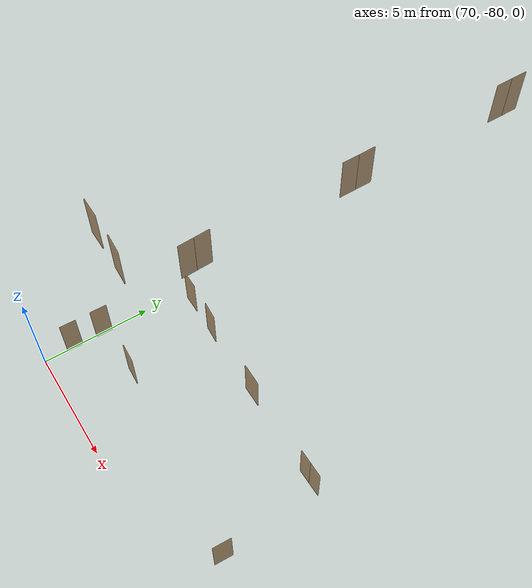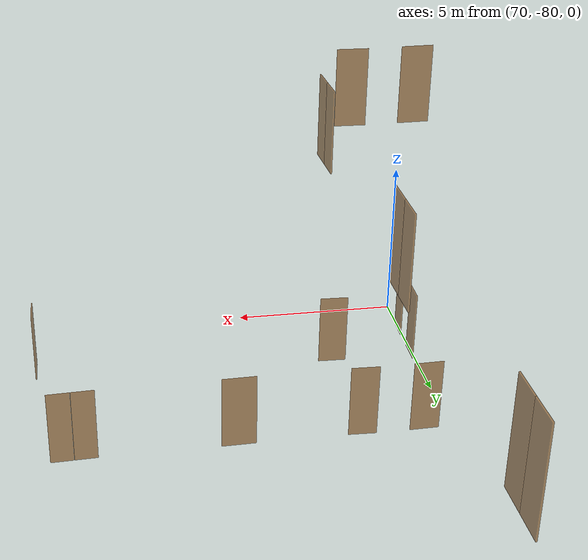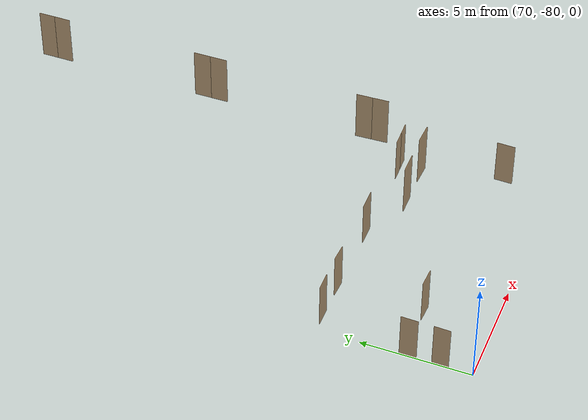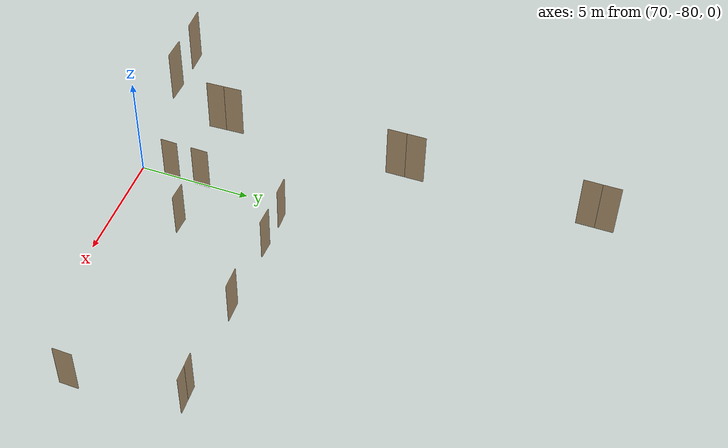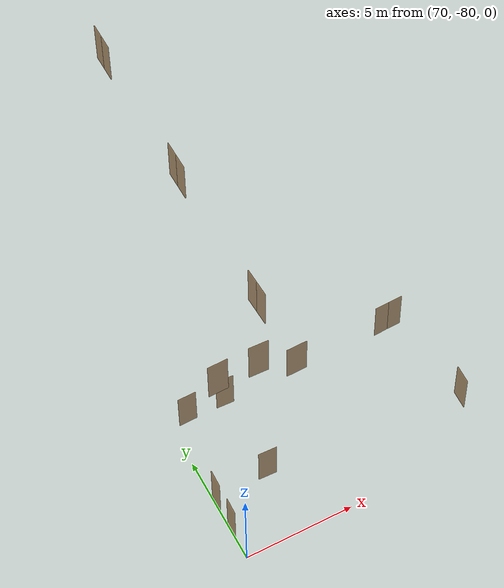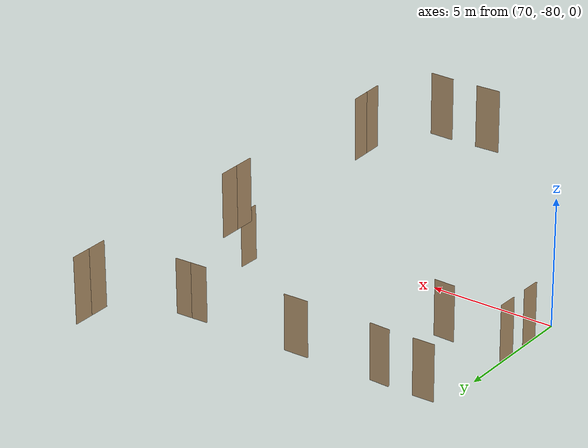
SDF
<sdf version="1.7">
 <world name="sim_world">
  <model name="can7">
   <pose>70.06035354413558 -77.11813783586021 0.0 0 0 1.549233235089427</pose>
   <link name="right">
    <pose>0 0 1.11 0 0 0</pose>
    <visual name="right_visual">
     <geometry><box><size>0.7728128371704641 0.03 2.2</size></box></geometry>
     <material>
      <ambient>0.5 0.25 0 0.6</ambient>
      <diffuse>0.5 0.25 0 0.6</diffuse>
      <pbr><metal><metalness>0.0</metalness></metal></pbr>
     </material>
    </visual>
    <collision name="right_collision">
     <geometry><box><size>0.7728128371704641 0.03 2.2</size></box></geometry>
     <surface><contact><collide_bitmask>0x02</collide_bitmask></contact></surface>
    </collision>
    <inertial>
     <mass>50.0</mass>
     <inertia><ixx>20.17041666666667</ixx><iyy>22.655165338731095</iyy><izz>2.4922486720644264</izz></inertia>
    </inertial>
   </link>
   <joint name="right_joint" type="revolute">
    <parent>world</parent>
    <child>right</child>
    <axis><xyz>0 0 -1</xyz><limit><lower>0</lower><upper>1.57</upper></limit></axis>
    <pose>0.39140641858523206 0 0 0 0 0</pose>
   </joint>
   <plugin name="register_component" filename="libregister_component.so">
    <component name="Door">
     <v_max_door>0.5</v_max_door>
     <a_max_door>0.3</a_max_door>
     <a_nom_door>0.15</a_nom_door>
     <dx_min_door>0.01</dx_min_door>
     <f_max_door>500.0</f_max_door>
     <ros_interface>true</ros_interface>
     <door name="can7" type="SwingDoor" left_joint_name="empty_joint" right_joint_name="right_joint"/>
    </component>
   </plugin>
  </model>
  <model name="can8">
   <pose>70.04037759244974 -78.55145725909793 0.0 0 0 1.5402560482815513</pose>
   <link name="right">
    <pose>0 0 1.11 0 0 0</pose>
    <visual name="right_visual">
     <geometry><box><size>0.7456228934420266 0.03 2.2</size></box></geometry>
     <material>
      <ambient>0.5 0.25 0 0.6</ambient>
      <diffuse>0.5 0.25 0 0.6</diffuse>
      <pbr><metal><metalness>0.0</metalness></metal></pbr>
     </material>
    </visual>
    <collision name="right_collision">
     <geometry><box><size>0.7456228934420266 0.03 2.2</size></box></geometry>
     <surface><contact><collide_bitmask>0x02</collide_bitmask></contact></surface>
    </collision>
    <inertial>
     <mass>50.0</mass>
     <inertia><ixx>20.17041666666667</ixx><iyy>22.483139580103586</iyy><izz>2.3202229134369157</izz></inertia>
    </inertial>
   </link>
   <joint name="right_joint" type="revolute">
    <parent>world</parent>
    <child>right</child>
    <axis><xyz>0 0 -1</xyz><limit><lower>0</lower><upper>1.57</upper></limit></axis>
    <pose>0.3778114467210133 0 0 0 0 0</pose>
   </joint>
   <plugin name="register_component" filename="libregister_component.so">
    <component name="Door">
     <v_max_door>0.5</v_max_door>
     <a_max_door>0.3</a_max_door>
     <a_nom_door>0.15</a_nom_door>
     <dx_min_door>0.01</dx_min_door>
     <f_max_door>500.0</f_max_door>
     <ros_interface>true</ros_interface>
     <door name="can8" type="SwingDoor" left_joint_name="empty_joint" right_joint_name="right_joint"/>
    </component>
   </plugin>
  </model>
  <model name="can6">
   <pose>72.58942125200996 -77.0033771156696 0.0 0 0 3.103509085440403</pose>
   <link name="right">
    <pose>0 0 1.11 0 0 0</pose>
    <visual name="right_visual">
     <geometry><box><size>0.845366502185707 0.03 2.2</size></box></geometry>
     <material>
      <ambient>0.5 0.25 0 0.6</ambient>
      <diffuse>0.5 0.25 0 0.6</diffuse>
      <pbr><metal><metalness>0.0</metalness></metal></pbr>
     </material>
    </visual>
    <collision name="right_collision">
     <geometry><box><size>0.845366502185707 0.03 2.2</size></box></geometry>
     <surface><contact><collide_bitmask>0x02</collide_bitmask></contact></surface>
    </collision>
    <inertial>
     <mass>50.0</mass>
     <inertia><ixx>20.17041666666667</ixx><iyy>23.144352179240407</iyy><izz>2.981435512573737</izz></inertia>
    </inertial>
   </link>
   <joint name="right_joint" type="revolute">
    <parent>world</parent>
    <child>right</child>
    <axis><xyz>0 0 1</xyz><limit><lower>0</lower><upper>1.57</upper></limit></axis>
    <pose>0.4276832510928535 0 0 0 0 0</pose>
   </joint>
   <plugin name="register_component" filename="libregister_component.so">
    <component name="Door">
     <v_max_door>0.5</v_max_door>
     <a_max_door>0.3</a_max_door>
     <a_nom_door>0.15</a_nom_door>
     <dx_min_door>0.01</dx_min_door>
     <f_max_door>500.0</f_max_door>
     <ros_interface>true</ros_interface>
     <door name="can6" type="SwingDoor" left_joint_name="empty_joint" right_joint_name="right_joint"/>
    </component>
   </plugin>
  </model>
  <model name="can2">
   <pose>72.59327055056514 -73.06088737912995 0.0 0 0 3.0966947153122124</pose>
   <link name="right">
    <pose>0 0 1.11 0 0 0</pose>
    <visual name="right_visual">
     <geometry><box><size>0.8106265710402226 0.03 2.2</size></box></geometry>
     <material>
      <ambient>0.5 0.25 0 0.6</ambient>
      <diffuse>0.5 0.25 0 0.6</diffuse>
      <pbr><metal><metalness>0.0</metalness></metal></pbr>
     </material>
    </visual>
    <collision name="right_collision">
     <geometry><box><size>0.8106265710402226 0.03 2.2</size></box></geometry>
     <surface><contact><collide_bitmask>0x02</collide_bitmask></contact></surface>
    </collision>
    <inertial>
     <mass>50.0</mass>
     <inertia><ixx>20.17041666666667</ixx><iyy>22.904647656985127</iyy><izz>2.741730990318455</izz></inertia>
    </inertial>
   </link>
   <joint name="right_joint" type="revolute">
    <parent>world</parent>
    <child>right</child>
    <axis><xyz>0 0 -1</xyz><limit><lower>0</lower><upper>1.57</upper></limit></axis>
    <pose>0.4103132855201113 0 0 0 0 0</pose>
   </joint>
   <plugin name="register_component" filename="libregister_component.so">
    <component name="Door">
     <v_max_door>0.5</v_max_door>
     <a_max_door>0.3</a_max_door>
     <a_nom_door>0.15</a_nom_door>
     <dx_min_door>0.01</dx_min_door>
     <f_max_door>500.0</f_max_door>
     <ros_interface>true</ros_interface>
     <door name="can2" type="SwingDoor" left_joint_name="empty_joint" right_joint_name="right_joint"/>
    </component>
   </plugin>
  </model>
  <model name="can1">
   <pose>70.7878485261773 -73.05168497442074 0.0 0 0 0.021507412331041125</pose>
   <link name="right">
    <pose>0 0 1.11 0 0 0</pose>
    <visual name="right_visual">
     <geometry><box><size>0.8468522677860504 0.03 2.2</size></box></geometry>
     <material>
      <ambient>0.5 0.25 0 0.6</ambient>
      <diffuse>0.5 0.25 0 0.6</diffuse>
      <pbr><metal><metalness>0.0</metalness></metal></pbr>
     </material>
    </visual>
    <collision name="right_collision">
     <geometry><box><size>0.8468522677860504 0.03 2.2</size></box></geometry>
     <surface><contact><collide_bitmask>0x02</collide_bitmask></contact></surface>
    </collision>
    <inertial>
     <mass>50.0</mass>
     <inertia><ixx>20.17041666666667</ixx><iyy>23.15482818105991</iyy><izz>2.991911514393235</izz></inertia>
    </inertial>
   </link>
   <joint name="right_joint" type="revolute">
    <parent>world</parent>
    <child>right</child>
    <axis><xyz>0 0 1</xyz><limit><lower>0</lower><upper>1.57</upper></limit></axis>
    <pose>0.4284261338930252 0 0 0 0 0</pose>
   </joint>
   <plugin name="register_component" filename="libregister_component.so">
    <component name="Door">
     <v_max_door>0.5</v_max_door>
     <a_max_door>0.3</a_max_door>
     <a_nom_door>0.15</a_nom_door>
     <dx_min_door>0.01</dx_min_door>
     <f_max_door>500.0</f_max_door>
     <ros_interface>true</ros_interface>
     <door name="can1" type="SwingDoor" left_joint_name="empty_joint" right_joint_name="right_joint"/>
    </component>
   </plugin>
  </model>
  <model name="can3">
   <pose>76.12580437975446 -73.07010100628392 0.0 0 0 0.018498442462925417</pose>
   <link name="right">
    <pose>0 0 1.11 0 0 0</pose>
    <visual name="right_visual">
     <geometry><box><size>0.9849950738526125 0.03 2.2</size></box></geometry>
     <material>
      <ambient>0.5 0.25 0 0.6</ambient>
      <diffuse>0.5 0.25 0 0.6</diffuse>
      <pbr><metal><metalness>0.0</metalness></metal></pbr>
     </material>
    </visual>
    <collision name="right_collision">
     <geometry><box><size>0.9849950738526125 0.03 2.2</size></box></geometry>
     <surface><contact><collide_bitmask>0x02</collide_bitmask></contact></surface>
    </collision>
    <inertial>
     <mass>50.0</mass>
     <inertia><ixx>20.17041666666667</ixx><iyy>24.209230397974643</iyy><izz>4.046313731307974</izz></inertia>
    </inertial>
   </link>
   <joint name="right_joint" type="revolute">
    <parent>world</parent>
    <child>right</child>
    <axis><xyz>0 0 -1</xyz><limit><lower>0</lower><upper>1.57</upper></limit></axis>
    <pose>0.49749753692630627 0 0 0 0 0</pose>
   </joint>
   <plugin name="register_component" filename="libregister_component.so">
    <component name="Door">
     <v_max_door>0.5</v_max_door>
     <a_max_door>0.3</a_max_door>
     <a_nom_door>0.15</a_nom_door>
     <dx_min_door>0.01</dx_min_door>
     <f_max_door>500.0</f_max_door>
     <ros_interface>true</ros_interface>
     <door name="can3" type="SwingDoor" left_joint_name="empty_joint" right_joint_name="right_joint"/>
    </component>
   </plugin>
  </model>
  <model name="can4">
   <pose>80.71146364835411 -73.03691623710695 0.0 0 0 0.03623150862274341</pose>
   <link name="right">
    <pose>0.33103247992899754 0 1.11 0 0 0</pose>
    <visual name="right_visual">
     <geometry><box><size>0.6520649598579951 0.03 2.2</size></box></geometry>
     <material>
      <ambient>0.5 0.25 0 0.6</ambient>
      <diffuse>0.5 0.25 0 0.6</diffuse>
      <pbr><metal><metalness>0.0</metalness></metal></pbr>
     </material>
    </visual>
    <collision name="right_collision">
     <geometry><box><size>0.6520649598579951 0.03 2.2</size></box></geometry>
     <surface><contact><collide_bitmask>0x02</collide_bitmask></contact></surface>
    </collision>
    <inertial>
     <mass>50.0</mass>
     <inertia><ixx>20.17041666666667</ixx><iyy>21.93828629947754</iyy><izz>1.77536963281087</izz></inertia>
    </inertial>
   </link>
   <joint name="right_joint" type="revolute">
    <parent>world</parent>
    <child>right</child>
    <axis><xyz>0 0 1</xyz><limit><lower>0</lower><upper>1.57</upper></limit></axis>
    <pose>0.33103247992899754 0 0 0 0 0</pose>
   </joint>
   <link name="left">
    <pose>-0.33103247992899754 0 1.11 0 0 0</pose>
    <visual name="left_visual">
     <geometry><box><size>0.6520649598579951 0.03 2.2</size></box></geometry>
     <material>
      <ambient>0.5 0.25 0 0.6</ambient>
      <diffuse>0.5 0.25 0 0.6</diffuse>
      <pbr><metal><metalness>0.0</metalness></metal></pbr>
     </material>
    </visual>
    <collision name="left_collision">
     <geometry><box><size>0.6520649598579951 0.03 2.2</size></box></geometry>
     <surface><contact><collide_bitmask>0x02</collide_bitmask></contact></surface>
    </collision>
    <inertial>
     <mass>50.0</mass>
     <inertia><ixx>20.17041666666667</ixx><iyy>21.93828629947754</iyy><izz>1.77536963281087</izz></inertia>
    </inertial>
   </link>
   <joint name="left_joint" type="revolute">
    <parent>world</parent>
    <child>left</child>
    <axis><xyz>0 0 1</xyz><limit><lower>-1.57</lower><upper>0</upper></limit></axis>
    <pose>-0.33103247992899754 0 0 0 0 0</pose>
   </joint>
   <plugin name="register_component" filename="libregister_component.so">
    <component name="Door">
     <v_max_door>0.5</v_max_door>
     <a_max_door>0.3</a_max_door>
     <a_nom_door>0.15</a_nom_door>
     <dx_min_door>0.01</dx_min_door>
     <f_max_door>500.0</f_max_door>
     <ros_interface>true</ros_interface>
     <door name="can4" type="DoubleSwingDoor" left_joint_name="left_joint" right_joint_name="right_joint"/>
    </component>
   </plugin>
  </model>
  <model name="can5">
   <pose>81.7004977056983 -77.67335706827876 0.0 0 0 1.5466963287256115</pose>
   <link name="right">
    <pose>0 0 1.11 0 0 0</pose>
    <visual name="right_visual">
     <geometry><box><size>0.8394490678208565 0.03 2.2</size></box></geometry>
     <material>
      <ambient>0.5 0.25 0 0.6</ambient>
      <diffuse>0.5 0.25 0 0.6</diffuse>
      <pbr><metal><metalness>0.0</metalness></metal></pbr>
     </material>
    </visual>
    <collision name="right_collision">
     <geometry><box><size>0.8394490678208565 0.03 2.2</size></box></geometry>
     <surface><contact><collide_bitmask>0x02</collide_bitmask></contact></surface>
    </collision>
    <inertial>
     <mass>50.0</mass>
     <inertia><ixx>20.17041666666667</ixx><iyy>23.10281140610544</iyy><izz>2.939894739438771</izz></inertia>
    </inertial>
   </link>
   <joint name="right_joint" type="revolute">
    <parent>world</parent>
    <child>right</child>
    <axis><xyz>0 0 1</xyz><limit><lower>0</lower><upper>1.57</upper></limit></axis>
    <pose>0.42472453391042825 0 0 0 0 0</pose>
   </joint>
   <plugin name="register_component" filename="libregister_component.so">
    <component name="Door">
     <v_max_door>0.5</v_max_door>
     <a_max_door>0.3</a_max_door>
     <a_nom_door>0.15</a_nom_door>
     <dx_min_door>0.01</dx_min_door>
     <f_max_door>500.0</f_max_door>
     <ros_interface>true</ros_interface>
     <door name="can5" type="SwingDoor" left_joint_name="empty_joint" right_joint_name="right_joint"/>
    </component>
   </plugin>
  </model>
  <model name="TD0104AI">
   <pose>73.76116416509116 -66.85944655126693 8.0 0 0 1.5805418816825874</pose>
   <link name="right">
    <pose>0.3619261226570596 0 1.11 0 0 0</pose>
    <visual name="right_visual">
     <geometry><box><size>0.7138522453141192 0.03 2.2</size></box></geometry>
     <material>
      <ambient>0.5 0.25 0 0.6</ambient>
      <diffuse>0.5 0.25 0 0.6</diffuse>
      <pbr><metal><metalness>0.0</metalness></metal></pbr>
     </material>
    </visual>
    <collision name="right_collision">
     <geometry><box><size>0.7138522453141192 0.03 2.2</size></box></geometry>
     <surface><contact><collide_bitmask>0x02</collide_bitmask></contact></surface>
    </collision>
    <inertial>
     <mass>50.0</mass>
     <inertia><ixx>20.17041666666667</ixx><iyy>22.289937617250047</iyy><izz>2.127020950583373</izz></inertia>
    </inertial>
   </link>
   <joint name="right_joint" type="revolute">
    <parent>world</parent>
    <child>right</child>
    <axis><xyz>0 0 -1</xyz><limit><lower>0</lower><upper>1.57</upper></limit></axis>
    <pose>0.3619261226570596 0 0 0 0 0</pose>
   </joint>
   <link name="left">
    <pose>-0.3619261226570596 0 1.11 0 0 0</pose>
    <visual name="left_visual">
     <geometry><box><size>0.7138522453141192 0.03 2.2</size></box></geometry>
     <material>
      <ambient>0.5 0.25 0 0.6</ambient>
      <diffuse>0.5 0.25 0 0.6</diffuse>
      <pbr><metal><metalness>0.0</metalness></metal></pbr>
     </material>
    </visual>
    <collision name="left_collision">
     <geometry><box><size>0.7138522453141192 0.03 2.2</size></box></geometry>
     <surface><contact><collide_bitmask>0x02</collide_bitmask></contact></surface>
    </collision>
    <inertial>
     <mass>50.0</mass>
     <inertia><ixx>20.17041666666667</ixx><iyy>22.289937617250047</iyy><izz>2.127020950583373</izz></inertia>
    </inertial>
   </link>
   <joint name="left_joint" type="revolute">
    <parent>world</parent>
    <child>left</child>
    <axis><xyz>0 0 -1</xyz><limit><lower>-1.57</lower><upper>0</upper></limit></axis>
    <pose>-0.3619261226570596 0 0 0 0 0</pose>
   </joint>
   <plugin name="register_component" filename="libregister_component.so">
    <component name="Door">
     <v_max_door>0.5</v_max_door>
     <a_max_door>0.3</a_max_door>
     <a_nom_door>0.15</a_nom_door>
     <dx_min_door>0.01</dx_min_door>
     <f_max_door>500.0</f_max_door>
     <ros_interface>true</ros_interface>
     <door name="TD0104AI" type="DoubleSwingDoor" left_joint_name="left_joint" right_joint_name="right_joint"/>
    </component>
   </plugin>
  </model>
  <model name="TD0105AI">
   <pose>73.78379682080418 -73.91818855977962 8.0 0 0 1.6134941406274728</pose>
   <link name="right">
    <pose>0.3394167036928094 0 1.11 0 0 0</pose>
    <visual name="right_visual">
     <geometry><box><size>0.6688334073856188 0.03 2.2</size></box></geometry>
     <material>
      <ambient>0.5 0.25 0 0.6</ambient>
      <diffuse>0.5 0.25 0 0.6</diffuse>
      <pbr><metal><metalness>0.0</metalness></metal></pbr>
     </material>
    </visual>
    <collision name="right_collision">
     <geometry><box><size>0.6688334073856188 0.03 2.2</size></box></geometry>
     <surface><contact><collide_bitmask>0x02</collide_bitmask></contact></surface>
    </collision>
    <inertial>
     <mass>50.0</mass>
     <inertia><ixx>20.17041666666667</ixx><iyy>22.03057552847941</iyy><izz>1.8676588618127383</izz></inertia>
    </inertial>
   </link>
   <joint name="right_joint" type="revolute">
    <parent>world</parent>
    <child>right</child>
    <axis><xyz>0 0 -1</xyz><limit><lower>0</lower><upper>1.57</upper></limit></axis>
    <pose>0.3394167036928094 0 0 0 0 0</pose>
   </joint>
   <link name="left">
    <pose>-0.3394167036928094 0 1.11 0 0 0</pose>
    <visual name="left_visual">
     <geometry><box><size>0.6688334073856188 0.03 2.2</size></box></geometry>
     <material>
      <ambient>0.5 0.25 0 0.6</ambient>
      <diffuse>0.5 0.25 0 0.6</diffuse>
      <pbr><metal><metalness>0.0</metalness></metal></pbr>
     </material>
    </visual>
    <collision name="left_collision">
     <geometry><box><size>0.6688334073856188 0.03 2.2</size></box></geometry>
     <surface><contact><collide_bitmask>0x02</collide_bitmask></contact></surface>
    </collision>
    <inertial>
     <mass>50.0</mass>
     <inertia><ixx>20.17041666666667</ixx><iyy>22.03057552847941</iyy><izz>1.8676588618127383</izz></inertia>
    </inertial>
   </link>
   <joint name="left_joint" type="revolute">
    <parent>world</parent>
    <child>left</child>
    <axis><xyz>0 0 -1</xyz><limit><lower>-1.57</lower><upper>0</upper></limit></axis>
    <pose>-0.3394167036928094 0 0 0 0 0</pose>
   </joint>
   <plugin name="register_component" filename="libregister_component.so">
    <component name="Door">
     <v_max_door>0.5</v_max_door>
     <a_max_door>0.3</a_max_door>
     <a_nom_door>0.15</a_nom_door>
     <dx_min_door>0.01</dx_min_door>
     <f_max_door>500.0</f_max_door>
     <ros_interface>true</ros_interface>
     <door name="TD0105AI" type="DoubleSwingDoor" left_joint_name="left_joint" right_joint_name="right_joint"/>
    </component>
   </plugin>
  </model>
  <model name="TD0118CP3">
   <pose>70.69289519193421 -76.50925675459348 8.0 0 0 -3.1202965498709876</pose>
   <link name="right">
    <pose>0 0 1.11 0 0 0</pose>
    <visual name="right_visual">
     <geometry><box><size>0.8786817897678904 0.03 2.2</size></box></geometry>
     <material>
      <ambient>0.5 0.25 0 0.6</ambient>
      <diffuse>0.5 0.25 0 0.6</diffuse>
      <pbr><metal><metalness>0.0</metalness></metal></pbr>
     </material>
    </visual>
    <collision name="right_collision">
     <geometry><box><size>0.8786817897678904 0.03 2.2</size></box></geometry>
     <surface><contact><collide_bitmask>0x02</collide_bitmask></contact></surface>
    </collision>
    <inertial>
     <mass>50.0</mass>
     <inertia><ixx>20.17041666666667</ixx><iyy>23.38367369862377</iyy><izz>3.2207570319570964</izz></inertia>
    </inertial>
   </link>
   <joint name="right_joint" type="revolute">
    <parent>world</parent>
    <child>right</child>
    <axis><xyz>0 0 -1</xyz><limit><lower>0</lower><upper>1.57</upper></limit></axis>
    <pose>0.4443408948839452 0 0 0 0 0</pose>
   </joint>
   <plugin name="register_component" filename="libregister_component.so">
    <component name="Door">
     <v_max_door>0.5</v_max_door>
     <a_max_door>0.3</a_max_door>
     <a_nom_door>0.15</a_nom_door>
     <dx_min_door>0.01</dx_min_door>
     <f_max_door>500.0</f_max_door>
     <ros_interface>true</ros_interface>
     <door name="TD0118CP3" type="SwingDoor" left_joint_name="empty_joint" right_joint_name="right_joint"/>
    </component>
   </plugin>
  </model>
  <model name="TD0118CP4">
   <pose>72.5011613042312 -76.49643048348364 8.0 0 0 -0.035525531201685036</pose>
   <link name="right">
    <pose>0 0 1.11 0 0 0</pose>
    <visual name="right_visual">
     <geometry><box><size>0.8665398344788962 0.03 2.2</size></box></geometry>
     <material>
      <ambient>0.5 0.25 0 0.6</ambient>
      <diffuse>0.5 0.25 0 0.6</diffuse>
      <pbr><metal><metalness>0.0</metalness></metal></pbr>
     </material>
    </visual>
    <collision name="right_collision">
     <geometry><box><size>0.8665398344788962 0.03 2.2</size></box></geometry>
     <surface><contact><collide_bitmask>0x02</collide_bitmask></contact></surface>
    </collision>
    <inertial>
     <mass>50.0</mass>
     <inertia><ixx>20.17041666666667</ixx><iyy>23.295380353077974</iyy><izz>3.1324636864113033</izz></inertia>
    </inertial>
   </link>
   <joint name="right_joint" type="revolute">
    <parent>world</parent>
    <child>right</child>
    <axis><xyz>0 0 1</xyz><limit><lower>0</lower><upper>1.57</upper></limit></axis>
    <pose>0.4382699172394481 0 0 0 0 0</pose>
   </joint>
   <plugin name="register_component" filename="libregister_component.so">
    <component name="Door">
     <v_max_door>0.5</v_max_door>
     <a_max_door>0.3</a_max_door>
     <a_nom_door>0.15</a_nom_door>
     <dx_min_door>0.01</dx_min_door>
     <f_max_door>500.0</f_max_door>
     <ros_interface>true</ros_interface>
     <door name="TD0118CP4" type="SwingDoor" left_joint_name="empty_joint" right_joint_name="right_joint"/>
    </component>
   </plugin>
  </model>
  <model name="TD0103AI">
   <pose>73.76084966579683 -59.77567315356594 8.0 0 0 1.5729614221660908</pose>
   <link name="right">
    <pose>0.34471092342329807 0 1.11 0 0 0</pose>
    <visual name="right_visual">
     <geometry><box><size>0.6794218468465961 0.03 2.2</size></box></geometry>
     <material>
      <ambient>0.5 0.25 0 0.6</ambient>
      <diffuse>0.5 0.25 0 0.6</diffuse>
      <pbr><metal><metalness>0.0</metalness></metal></pbr>
     </material>
    </visual>
    <collision name="right_collision">
     <geometry><box><size>0.6794218468465961 0.03 2.2</size></box></geometry>
     <surface><contact><collide_bitmask>0x02</collide_bitmask></contact></surface>
    </collision>
    <inertial>
     <mass>50.0</mass>
     <inertia><ixx>20.17041666666667</ixx><iyy>22.09005852488517</iyy><izz>1.927141858218498</izz></inertia>
    </inertial>
   </link>
   <joint name="right_joint" type="revolute">
    <parent>world</parent>
    <child>right</child>
    <axis><xyz>0 0 -1</xyz><limit><lower>0</lower><upper>1.57</upper></limit></axis>
    <pose>0.34471092342329807 0 0 0 0 0</pose>
   </joint>
   <link name="left">
    <pose>-0.34471092342329807 0 1.11 0 0 0</pose>
    <visual name="left_visual">
     <geometry><box><size>0.6794218468465961 0.03 2.2</size></box></geometry>
     <material>
      <ambient>0.5 0.25 0 0.6</ambient>
      <diffuse>0.5 0.25 0 0.6</diffuse>
      <pbr><metal><metalness>0.0</metalness></metal></pbr>
     </material>
    </visual>
    <collision name="left_collision">
     <geometry><box><size>0.6794218468465961 0.03 2.2</size></box></geometry>
     <surface><contact><collide_bitmask>0x02</collide_bitmask></contact></surface>
    </collision>
    <inertial>
     <mass>50.0</mass>
     <inertia><ixx>20.17041666666667</ixx><iyy>22.09005852488517</iyy><izz>1.927141858218498</izz></inertia>
    </inertial>
   </link>
   <joint name="left_joint" type="revolute">
    <parent>world</parent>
    <child>left</child>
    <axis><xyz>0 0 -1</xyz><limit><lower>-1.57</lower><upper>0</upper></limit></axis>
    <pose>-0.34471092342329807 0 0 0 0 0</pose>
   </joint>
   <plugin name="register_component" filename="libregister_component.so">
    <component name="Door">
     <v_max_door>0.5</v_max_door>
     <a_max_door>0.3</a_max_door>
     <a_nom_door>0.15</a_nom_door>
     <dx_min_door>0.01</dx_min_door>
     <f_max_door>500.0</f_max_door>
     <ros_interface>true</ros_interface>
     <door name="TD0103AI" type="DoubleSwingDoor" left_joint_name="left_joint" right_joint_name="right_joint"/>
    </component>
   </plugin>
  </model>
 </world>
</sdf>
